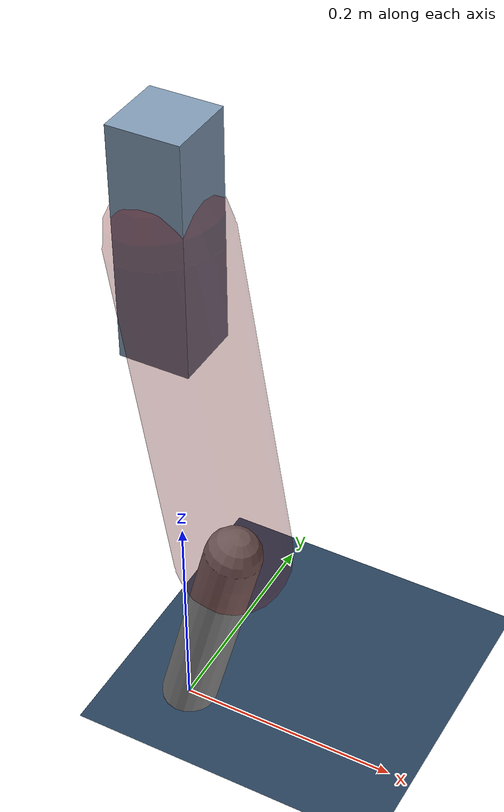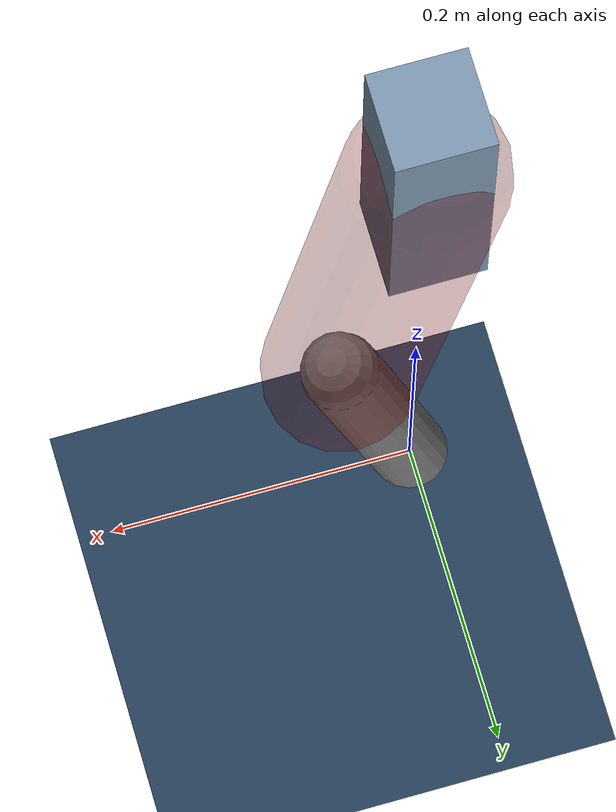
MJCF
<mujoco model="Hopper2D">
	<compiler inertiafromgeom="true" angle="radian" />
	<option timestep="0.001" integrator="implicit" cone="elliptic" solver="Newton" tolerance="1e-10" />

	<default>
		<geom contype="1" conaffinity="1" condim="3" friction="2 0.005 0.0001" solref="0.005 1" />
		<joint limited="true" damping="0.1" />
	</default>

	<asset>
		<texture name="skybox" type="skybox" builtin="gradient" rgb1=".4 .6 .8" rgb2="0 0 0" width="800" height="800" />
		<texture name="grid" type="2d" builtin="checker" rgb1=".1 .2 .3" rgb2=".2 .3 .4" width="300" height="300" mark="edge" markrgb=".2 .3 .4" />
		<material name="ground" texture="grid" texrepeat="1 1" texuniform="true" reflectance="0.1" />
		<material name="leg" rgba="0.5 0.6 0.7 1" />
	</asset>

	<worldbody>

		<geom name="floor" type="plane" size="5 5 0.25" material="ground" />

		<light directional="false" diffuse="0.8 0.8 0.8" specular="0.3 0.3 0.3" pos="0 0 2" dir="0 0 -1" />
		<light mode="targetbodycom" target="base" directional="false" diffuse="0.8 0.8 0.8" specular="0.3 0.3 0.3" pos="0 0 2" dir="0 0 -1" />

		<camera name="fixed" pos="0 -2 1" xyaxes="1 0 0 0 0 1" />
		<camera name="tracking" mode="trackcom" pos="0 -3 1" />

		<body name="root" pos="0 0 0.496046613544018">
			<joint name="slide_x" type="slide" axis="1 0 0" range="-100 100" />
			<joint name="slide_z" type="slide" axis="0 0 1" range="0 10" />

			<body name="base" pos="0 0 0">
				<geom name="torso" type="box" size="0.03 0.03 0.1" mass="3.371" material="leg" />

				<body name="link1" pos="0 0 0" euler="0 1.409644707927523 0">
					<joint type="hinge" axis="0 -1 0" pos="0 0 0" name="hinge1" limited="true" range="-3.14 3.14" stiffness="0" damping="0.1" />
					<geom name="thigh" type="capsule" fromto="0 0 0 0.30501037320033647 0 0" size="0.05" rgba="0.5 0 0 0.3" mass="1.0023280076409085" />

					<body name="link2" pos="0.30501037320033647 0 0" euler="0 0.4070635234119897 0">
						<joint type="hinge" axis="0 -1 0" pos="0 0 0" name="hinge2" limited="true" range="-3.14 3.14" stiffness="0" damping="0.1" />
						<geom name="shank" type="capsule" fromto="0 0 0 0.20103624034368156 0 0" size="0.025" mass="0.4017326163093134" />

					</body>
				</body>
			</body>
		</body>
	</worldbody>

	<actuator>
		<motor name="torque1" joint="hinge1" ctrlrange="-203.8187548655358 203.8187548655358" ctrllimited="true" gear="1" />
		<motor name="torque2" joint="hinge2" ctrlrange="-104.670498499846 104.670498499846" ctrllimited="true" gear="1" />
	</actuator>
</mujoco>
